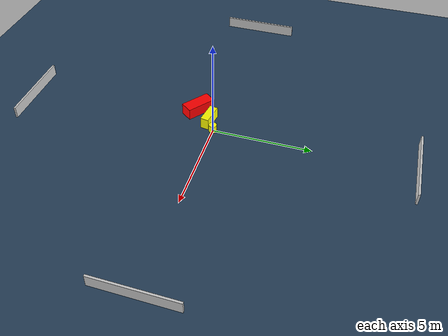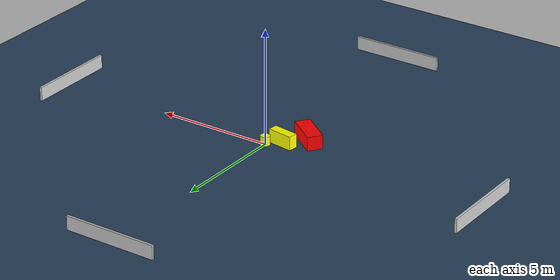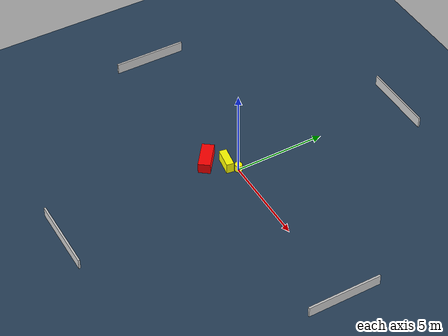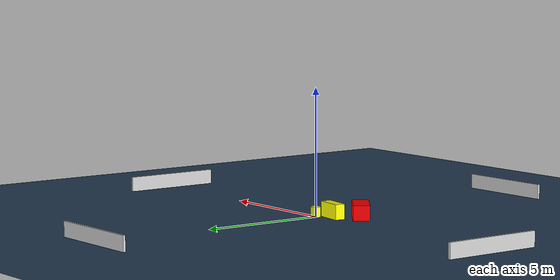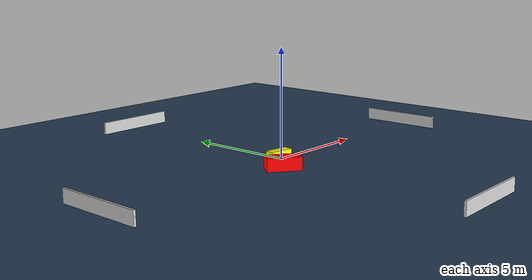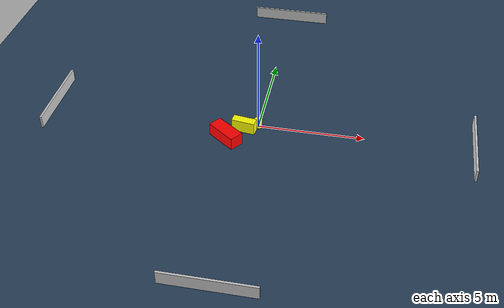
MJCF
<?xml version="1.0" ?>
<mujoco model="generated_environment">
  <option timestep="0.01" integrator="RK4" cone="elliptic"/>
  <default>
    <geom density="1"/>
  </default>
  <asset>
    <texture builtin="gradient" height="3072" name="skybox" rgb1="0.3 0.5 0.7" rgb2="0 0 0" type="skybox" width="512"/>
    <texture builtin="checker" height="300" name="groundplane" rgb1="0.2 0.3 0.4" rgb2="0.1 0.2 0.3" type="2d" width="300"/>
    <material name="groundplane" reflectance="0.2" texrepeat="5 5" texture="groundplane"/>
  </asset>
  <worldbody>
    <light dir="0 0 -1" directional="true" pos="0 0 1.5"/>
    <geom condim="3" friction="0.5 0.005 0.001" material="groundplane" name="floor" pos="0 0 0" size="0 0 0.05" type="plane"/>
    <body name="walls">
      <geom name="wall_1" condim="4" pos="-10.0 0.0 0.3" rgba="0.800000011920929 0.800000011920929 0.800000011920929 1.0" size="0.05 2.0 0.3" type="box"/>
      <geom name="wall_2" condim="4" pos="10.0 0.0 0.3" rgba="0.800000011920929 0.800000011920929 0.800000011920929 1.0" size="0.05 2.0 0.3" type="box"/>
      <geom name="wall_3" condim="4" pos="0.0 -10.0 0.3" rgba="0.800000011920929 0.800000011920929 0.800000011920929 1.0" size="2.0 0.05 0.3" type="box"/>
      <geom name="wall_4" condim="4" pos="0.0 10.0 0.3" rgba="0.800000011920929 0.800000011920929 0.800000011920929 1.0" size="2.0 0.05 0.3" type="box"/>
    </body>
    <body name="robot">
      <joint name="joint_x" type="slide" pos="0 0 0" axis="1 0 0"/>
      <joint name="joint_y" type="slide" pos="0 0 0" axis="0 1 0"/>
      <geom name="robot" type="cylinder" pos="0.0 0.0 0.2" size="0.2 0.2 0.0" mass="5.0" friction="1.0 0.005 0.0001" condim="4" rgba="1.0 1.0 0.0 1.0"/>
    </body>
    <body name="obstacle_1_movable">
      <geom name="obstacle_1_movable" condim="4" pos="-0.5947254022207096 -0.3780922839310784 0.3" euler="0 0 351.4707443753551" friction="0.0 0.005 0.001" rgba="1.0 1.0 0.0 1.0" size="0.5557725737490755 0.20654618725841545 0.3" type="box" mass="0.1"/>
      <joint type="free"/>
    </body>
    <body name="obstacle_2_static">
      <geom name="obstacle_2_static" condim="4" pos="-1.2941956302901987 -1.1940414217108826 0.3" euler="0 0 142.93650670868365" friction="0.0 0.005 0.001" rgba="1.0 0.0 0.0 1.0" size="0.7702551061747869 0.32898084317410575 0.3" type="box"/>
    </body>
  </worldbody>
  <actuator>
    <motor name="actuator_x" joint="joint_x" gear="1" ctrlrange="-1 1"/>
    <motor name="actuator_y" joint="joint_y" gear="1" ctrlrange="-1 1"/>
  </actuator>
</mujoco>
